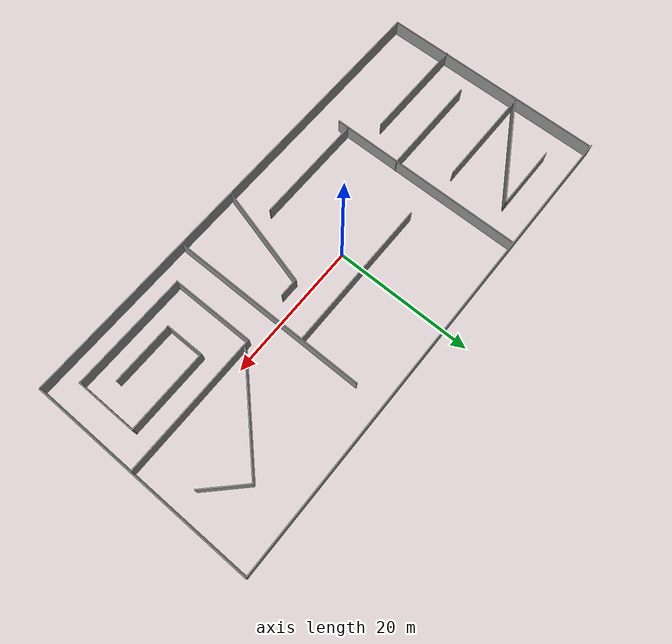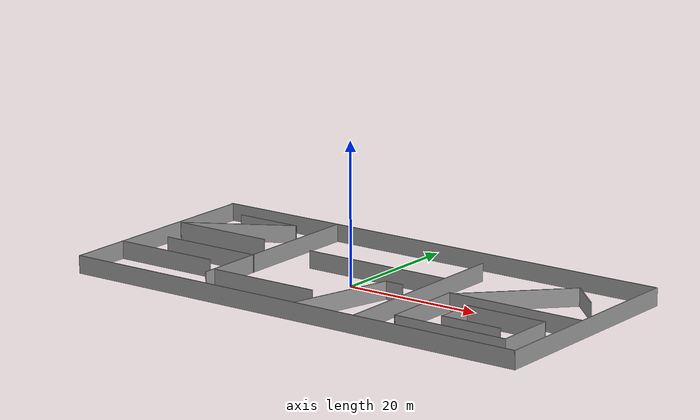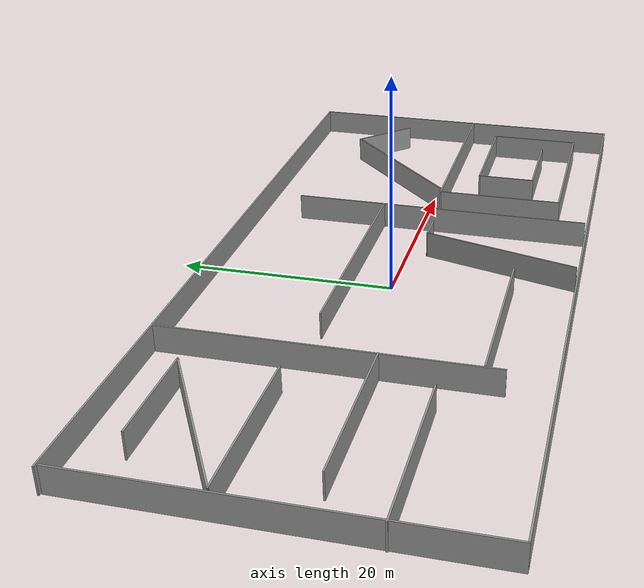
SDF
<?xml version='1.0'?>
<sdf version='1.6'>
  <model name='practice_base'>
    <pose frame=''>1.95086 0.063622 0 0 -0 0</pose>
    <link name='Wall_0'>
      <collision name='Wall_0_Collision'>
        <geometry>
          <box>
            <size>33 0.15 2.5</size>
          </box>
        </geometry>
        <pose frame=''>0 0 1.25 0 -0 0</pose>
      </collision>
      <visual name='Wall_0_Visual'>
        <pose frame=''>0 0 1.25 0 -0 0</pose>
        <geometry>
          <box>
            <size>33 0.15 2.5</size>
          </box>
        </geometry>
        <material>
          <script>
            <uri>file://media/materials/scripts/gazebo.material</uri>
            <name>Gazebo/Grey</name>
          </script>
          <ambient>1 1 1 1</ambient>
        </material>
        <meta>
          <layer>0</layer>
        </meta>
      </visual>
      <pose frame=''>-35.0767 -0.125 0 0 -0 -1.5708</pose>
    </link>
    <link name='Wall_1'>
      <collision name='Wall_1_Collision'>
        <geometry>
          <box>
            <size>70.5 0.15 2.5</size>
          </box>
        </geometry>
        <pose frame=''>0 0 1.25 0 -0 0</pose>
      </collision>
      <visual name='Wall_1_Visual'>
        <pose frame=''>0 0 1.25 0 -0 0</pose>
        <geometry>
          <box>
            <size>70.5 0.15 2.5</size>
          </box>
        </geometry>
        <material>
          <script>
            <uri>file://media/materials/scripts/gazebo.material</uri>
            <name>Gazebo/Grey</name>
          </script>
          <ambient>1 1 1 1</ambient>
        </material>
        <meta>
          <layer>0</layer>
        </meta>
      </visual>
      <pose frame=''>0.098313 -16.55 0 0 -0 0</pose>
    </link>
    <link name='Wall_11'>
      <collision name='Wall_11_Collision'>
        <geometry>
          <box>
            <size>14.75 0.15 2.5</size>
          </box>
        </geometry>
        <pose frame=''>0 0 1.25 0 -0 0</pose>
      </collision>
      <visual name='Wall_11_Visual'>
        <pose frame=''>0 0 1.25 0 -0 0</pose>
        <geometry>
          <box>
            <size>14.75 0.15 2.5</size>
          </box>
        </geometry>
        <material>
          <script>
            <uri>file://media/materials/scripts/gazebo.material</uri>
            <name>Gazebo/Grey</name>
          </script>
          <ambient>1 1 1 1</ambient>
        </material>
        <meta>
          <layer>0</layer>
        </meta>
      </visual>
      <pose frame=''>-27.3925 4.41999 0 0 -0 0</pose>
    </link>
    <link name='Wall_13'>
      <collision name='Wall_13_Collision'>
        <geometry>
          <box>
            <size>15 0.15 2.5</size>
          </box>
        </geometry>
        <pose frame=''>0 0 1.25 0 -0 0</pose>
      </collision>
      <visual name='Wall_13_Visual'>
        <pose frame=''>0 0 1.25 0 -0 0</pose>
        <geometry>
          <box>
            <size>15 0.15 2.5</size>
          </box>
        </geometry>
        <material>
          <script>
            <uri>file://media/materials/scripts/gazebo.material</uri>
            <name>Gazebo/Grey</name>
          </script>
          <ambient>1 1 1 1</ambient>
        </material>
        <meta>
          <layer>0</layer>
        </meta>
      </visual>
      <pose frame=''>-23.9329 -2.44345 0 0 -0 3.14159</pose>
    </link>
    <link name='Wall_15'>
      <collision name='Wall_15_Collision'>
        <geometry>
          <box>
            <size>15.5 0.15 2.5</size>
          </box>
        </geometry>
        <pose frame=''>0 0 1.25 0 -0 0</pose>
      </collision>
      <visual name='Wall_15_Visual'>
        <pose frame=''>0 0 1.25 0 -0 0</pose>
        <geometry>
          <box>
            <size>15.5 0.15 2.5</size>
          </box>
        </geometry>
        <material>
          <script>
            <uri>file://media/materials/scripts/gazebo.material</uri>
            <name>Gazebo/Grey</name>
          </script>
          <ambient>1 1 1 1</ambient>
        </material>
        <meta>
          <layer>0</layer>
        </meta>
      </visual>
      <pose frame=''>-27.5128 -7.67947 0 0 -0 0</pose>
    </link>
    <link name='Wall_17'>
      <collision name='Wall_17_Collision'>
        <geometry>
          <box>
            <size>28.75 0.15 2.5</size>
          </box>
        </geometry>
        <pose frame=''>0 0 1.25 0 -0 0</pose>
      </collision>
      <visual name='Wall_17_Visual'>
        <pose frame=''>0 0 1.25 0 -0 0</pose>
        <geometry>
          <box>
            <size>28.75 0.15 2.5</size>
          </box>
        </geometry>
        <material>
          <script>
            <uri>file://media/materials/scripts/gazebo.material</uri>
            <name>Gazebo/Grey</name>
          </script>
          <ambient>1 1 1 1</ambient>
        </material>
        <meta>
          <layer>0</layer>
        </meta>
      </visual>
      <pose frame=''>10.6628 -1.94107 0 0 -0 1.5708</pose>
    </link>
    <link name='Wall_19'>
      <collision name='Wall_19_Collision'>
        <geometry>
          <box>
            <size>15 0.15 2.5</size>
          </box>
        </geometry>
        <pose frame=''>0 0 1.25 0 -0 0</pose>
      </collision>
      <visual name='Wall_19_Visual'>
        <pose frame=''>0 0 1.25 0 -0 0</pose>
        <geometry>
          <box>
            <size>15 0.15 2.5</size>
          </box>
        </geometry>
        <material>
          <script>
            <uri>file://media/materials/scripts/gazebo.material</uri>
            <name>Gazebo/Grey</name>
          </script>
          <ambient>1 1 1 1</ambient>
        </material>
        <meta>
          <layer>0</layer>
        </meta>
      </visual>
      <pose frame=''>3.2446 -9.06907 0 0 -0 1.309</pose>
    </link>
    <link name='Wall_2'>
      <collision name='Wall_2_Collision'>
        <geometry>
          <box>
            <size>33.25 0.15 2.5</size>
          </box>
        </geometry>
        <pose frame=''>0 0 1.25 0 -0 0</pose>
      </collision>
      <visual name='Wall_2_Visual'>
        <pose frame=''>0 0 1.25 0 -0 0</pose>
        <geometry>
          <box>
            <size>33.25 0.15 2.5</size>
          </box>
        </geometry>
        <material>
          <script>
            <uri>file://media/materials/scripts/gazebo.material</uri>
            <name>Gazebo/Grey</name>
          </script>
          <ambient>1 1 1 1</ambient>
        </material>
        <meta>
          <layer>0</layer>
        </meta>
      </visual>
      <pose frame=''>35.2733 0 0 0 -0 1.5708</pose>
    </link>
    <link name='Wall_20'>
      <collision name='Wall_20_Collision'>
        <geometry>
          <box>
            <size>2.75 0.15 2.5</size>
          </box>
        </geometry>
        <pose frame=''>0 0 1.25 0 -0 0</pose>
      </collision>
      <visual name='Wall_20_Visual'>
        <pose frame=''>0 0 1.25 0 -0 0</pose>
        <geometry>
          <box>
            <size>2.75 0.15 2.5</size>
          </box>
        </geometry>
        <material>
          <script>
            <uri>file://media/materials/scripts/gazebo.material</uri>
            <name>Gazebo/Grey</name>
          </script>
          <ambient>1 1 1 1</ambient>
        </material>
        <meta>
          <layer>0</layer>
        </meta>
      </visual>
      <pose frame=''>6.46633 -1.89707 0 0 -0 0</pose>
    </link>
    <link name='Wall_22'>
      <collision name='Wall_22_Collision'>
        <geometry>
          <box>
            <size>16.25 0.15 2.5</size>
          </box>
        </geometry>
        <pose frame=''>0 0 1.25 0 -0 0</pose>
      </collision>
      <visual name='Wall_22_Visual'>
        <pose frame=''>0 0 1.25 0 -0 0</pose>
        <geometry>
          <box>
            <size>16.25 0.15 2.5</size>
          </box>
        </geometry>
        <material>
          <script>
            <uri>file://media/materials/scripts/gazebo.material</uri>
            <name>Gazebo/Grey</name>
          </script>
          <ambient>1 1 1 1</ambient>
        </material>
        <meta>
          <layer>0</layer>
        </meta>
      </visual>
      <pose frame=''>-8.24564 -10.8635 0 0 -0 0</pose>
    </link>
    <link name='Wall_24'>
      <collision name='Wall_24_Collision'>
        <geometry>
          <box>
            <size>22.25 0.15 2.5</size>
          </box>
        </geometry>
        <pose frame=''>0 0 1.25 0 -0 0</pose>
      </collision>
      <visual name='Wall_24_Visual'>
        <pose frame=''>0 0 1.25 0 -0 0</pose>
        <geometry>
          <box>
            <size>22.25 0.15 2.5</size>
          </box>
        </geometry>
        <material>
          <script>
            <uri>file://media/materials/scripts/gazebo.material</uri>
            <name>Gazebo/Grey</name>
          </script>
          <ambient>1 1 1 1</ambient>
        </material>
        <meta>
          <layer>0</layer>
        </meta>
      </visual>
      <pose frame=''>-0.52871 3.71242 0 0 -0 3.14159</pose>
    </link>
    <link name='Wall_26'>
      <collision name='Wall_26_Collision'>
        <geometry>
          <box>
            <size>20.5 0.15 2.5</size>
          </box>
        </geometry>
        <pose frame=''>0 0 1.25 0 -0 0</pose>
      </collision>
      <visual name='Wall_26_Visual'>
        <pose frame=''>0 0 1.25 0 -0 0</pose>
        <geometry>
          <box>
            <size>20.5 0.15 2.5</size>
          </box>
        </geometry>
        <material>
          <script>
            <uri>file://media/materials/scripts/gazebo.material</uri>
            <name>Gazebo/Grey</name>
          </script>
          <ambient>1 1 1 1</ambient>
        </material>
        <meta>
          <layer>0</layer>
        </meta>
      </visual>
      <pose frame=''>25.0405 -1.24058 0 0 -0 3.14159</pose>
    </link>
    <link name='Wall_27'>
      <collision name='Wall_27_Collision'>
        <geometry>
          <box>
            <size>12.25 0.15 2.5</size>
          </box>
        </geometry>
        <pose frame=''>0 0 1.25 0 -0 0</pose>
      </collision>
      <visual name='Wall_27_Visual'>
        <pose frame=''>0 0 1.25 0 -0 0</pose>
        <geometry>
          <box>
            <size>12.25 0.15 2.5</size>
          </box>
        </geometry>
        <material>
          <script>
            <uri>file://media/materials/scripts/gazebo.material</uri>
            <name>Gazebo/Grey</name>
          </script>
          <ambient>1 1 1 1</ambient>
        </material>
        <meta>
          <layer>0</layer>
        </meta>
      </visual>
      <pose frame=''>14.8655 -7.29058 0 0 -0 -1.5708</pose>
    </link>
    <link name='Wall_28'>
      <collision name='Wall_28_Collision'>
        <geometry>
          <box>
            <size>17 0.15 2.5</size>
          </box>
        </geometry>
        <pose frame=''>0 0 1.25 0 -0 0</pose>
      </collision>
      <visual name='Wall_28_Visual'>
        <pose frame=''>0 0 1.25 0 -0 0</pose>
        <geometry>
          <box>
            <size>17 0.15 2.5</size>
          </box>
        </geometry>
        <material>
          <script>
            <uri>file://media/materials/scripts/gazebo.material</uri>
            <name>Gazebo/Grey</name>
          </script>
          <ambient>1 1 1 1</ambient>
        </material>
        <meta>
          <layer>0</layer>
        </meta>
      </visual>
      <pose frame=''>23.2905 -13.3406 0 0 -0 0</pose>
    </link>
    <link name='Wall_29'>
      <collision name='Wall_29_Collision'>
        <geometry>
          <box>
            <size>9 0.15 2.5</size>
          </box>
        </geometry>
        <pose frame=''>0 0 1.25 0 -0 0</pose>
      </collision>
      <visual name='Wall_29_Visual'>
        <pose frame=''>0 0 1.25 0 -0 0</pose>
        <geometry>
          <box>
            <size>9 0.15 2.5</size>
          </box>
        </geometry>
        <material>
          <script>
            <uri>file://media/materials/scripts/gazebo.material</uri>
            <name>Gazebo/Grey</name>
          </script>
          <ambient>1 1 1 1</ambient>
        </material>
        <meta>
          <layer>0</layer>
        </meta>
      </visual>
      <pose frame=''>31.7155 -8.91558 0 0 -0 1.5708</pose>
    </link>
    <link name='Wall_30'>
      <collision name='Wall_30_Collision'>
        <geometry>
          <box>
            <size>12 0.15 2.5</size>
          </box>
        </geometry>
        <pose frame=''>0 0 1.25 0 -0 0</pose>
      </collision>
      <visual name='Wall_30_Visual'>
        <pose frame=''>0 0 1.25 0 -0 0</pose>
        <geometry>
          <box>
            <size>12 0.15 2.5</size>
          </box>
        </geometry>
        <material>
          <script>
            <uri>file://media/materials/scripts/gazebo.material</uri>
            <name>Gazebo/Grey</name>
          </script>
          <ambient>1 1 1 1</ambient>
        </material>
        <meta>
          <layer>0</layer>
        </meta>
      </visual>
      <pose frame=''>25.7905 -4.49058 0 0 -0 3.14159</pose>
    </link>
    <link name='Wall_31'>
      <collision name='Wall_31_Collision'>
        <geometry>
          <box>
            <size>5.75 0.15 2.5</size>
          </box>
        </geometry>
        <pose frame=''>0 0 1.25 0 -0 0</pose>
      </collision>
      <visual name='Wall_31_Visual'>
        <pose frame=''>0 0 1.25 0 -0 0</pose>
        <geometry>
          <box>
            <size>5.75 0.15 2.5</size>
          </box>
        </geometry>
        <material>
          <script>
            <uri>file://media/materials/scripts/gazebo.material</uri>
            <name>Gazebo/Grey</name>
          </script>
          <ambient>1 1 1 1</ambient>
        </material>
        <meta>
          <layer>0</layer>
        </meta>
      </visual>
      <pose frame=''>19.8655 -7.29058 0 0 -0 -1.5708</pose>
    </link>
    <link name='Wall_32'>
      <collision name='Wall_32_Collision'>
        <geometry>
          <box>
            <size>9 0.15 2.5</size>
          </box>
        </geometry>
        <pose frame=''>0 0 1.25 0 -0 0</pose>
      </collision>
      <visual name='Wall_32_Visual'>
        <pose frame=''>0 0 1.25 0 -0 0</pose>
        <geometry>
          <box>
            <size>9 0.15 2.5</size>
          </box>
        </geometry>
        <material>
          <script>
            <uri>file://media/materials/scripts/gazebo.material</uri>
            <name>Gazebo/Grey</name>
          </script>
          <ambient>1 1 1 1</ambient>
        </material>
        <meta>
          <layer>0</layer>
        </meta>
      </visual>
      <pose frame=''>24.2905 -10.0906 0 0 -0 0</pose>
    </link>
    <link name='Wall_34'>
      <collision name='Wall_34_Collision'>
        <geometry>
          <box>
            <size>16.5 0.15 2.5</size>
          </box>
        </geometry>
        <pose frame=''>0 0 1.25 0 -0 0</pose>
      </collision>
      <visual name='Wall_34_Visual'>
        <pose frame=''>0 0 1.25 0 -0 0</pose>
        <geometry>
          <box>
            <size>16.5 0.15 2.5</size>
          </box>
        </geometry>
        <material>
          <script>
            <uri>file://media/materials/scripts/gazebo.material</uri>
            <name>Gazebo/Grey</name>
          </script>
          <ambient>1 1 1 1</ambient>
        </material>
        <meta>
          <layer>0</layer>
        </meta>
      </visual>
      <pose frame=''>21.5379 4.75229 0 0 -0 0.785398</pose>
    </link>
    <link name='Wall_35'>
      <collision name='Wall_35_Collision'>
        <geometry>
          <box>
            <size>6.75 0.15 2.5</size>
          </box>
        </geometry>
        <pose frame=''>0 0 1.25 0 -0 0</pose>
      </collision>
      <visual name='Wall_35_Visual'>
        <pose frame=''>0 0 1.25 0 -0 0</pose>
        <geometry>
          <box>
            <size>6.75 0.15 2.5</size>
          </box>
        </geometry>
        <material>
          <script>
            <uri>file://media/materials/scripts/gazebo.material</uri>
            <name>Gazebo/Grey</name>
          </script>
          <ambient>1 1 1 1</ambient>
        </material>
        <meta>
          <layer>0</layer>
        </meta>
      </visual>
      <pose frame=''>29.652 8.19944 0 0 -0 -0.785398</pose>
    </link>
    <link name='Wall_4'>
      <collision name='Wall_4_Collision'>
        <geometry>
          <box>
            <size>70.5 0.15 2.5</size>
          </box>
        </geometry>
        <pose frame=''>0 0 1.25 0 -0 0</pose>
      </collision>
      <visual name='Wall_4_Visual'>
        <pose frame=''>0 0 1.25 0 -0 0</pose>
        <geometry>
          <box>
            <size>70.5 0.15 2.5</size>
          </box>
        </geometry>
        <material>
          <script>
            <uri>file://media/materials/scripts/gazebo.material</uri>
            <name>Gazebo/Grey</name>
          </script>
          <ambient>1 1 1 1</ambient>
        </material>
        <meta>
          <layer>0</layer>
        </meta>
      </visual>
      <pose frame=''>-0.098311 16.5433 0 0 -0 0</pose>
    </link>
    <link name='Wall_6'>
      <collision name='Wall_6_Collision'>
        <geometry>
          <box>
            <size>29 0.15 2.5</size>
          </box>
        </geometry>
        <pose frame=''>0 0 1.25 0 -0 0</pose>
      </collision>
      <visual name='Wall_6_Visual'>
        <pose frame=''>0 0 1.25 0 -0 0</pose>
        <geometry>
          <box>
            <size>29 0.15 2.5</size>
          </box>
        </geometry>
        <material>
          <script>
            <uri>file://media/materials/scripts/gazebo.material</uri>
            <name>Gazebo/Grey</name>
          </script>
          <ambient>1 1 1 1</ambient>
        </material>
        <meta>
          <layer>0</layer>
        </meta>
      </visual>
      <pose frame=''>-16.5581 1.95561 0 0 -0 -1.5708</pose>
    </link>
    <link name='Wall_8'>
      <collision name='Wall_8_Collision'>
        <geometry>
          <box>
            <size>16.25 0.15 2.5</size>
          </box>
        </geometry>
        <pose frame=''>0 0 1.25 0 -0 0</pose>
      </collision>
      <visual name='Wall_8_Visual'>
        <pose frame=''>0 0 1.25 0 -0 0</pose>
        <geometry>
          <box>
            <size>16.25 0.15 2.5</size>
          </box>
        </geometry>
        <material>
          <script>
            <uri>file://media/materials/scripts/gazebo.material</uri>
            <name>Gazebo/Grey</name>
          </script>
          <ambient>1 1 1 1</ambient>
        </material>
        <meta>
          <layer>0</layer>
        </meta>
      </visual>
      <pose frame=''>-27.721 8.44499 0 0 -0 0.523599</pose>
    </link>
    <link name='Wall_9'>
      <collision name='Wall_9_Collision'>
        <geometry>
          <box>
            <size>9.75 0.15 2.5</size>
          </box>
        </geometry>
        <pose frame=''>0 0 1.25 0 -0 0</pose>
      </collision>
      <visual name='Wall_9_Visual'>
        <pose frame=''>0 0 1.25 0 -0 0</pose>
        <geometry>
          <box>
            <size>9.75 0.15 2.5</size>
          </box>
        </geometry>
        <material>
          <script>
            <uri>file://media/materials/scripts/gazebo.material</uri>
            <name>Gazebo/Grey</name>
          </script>
          <ambient>1 1 1 1</ambient>
        </material>
        <meta>
          <layer>0</layer>
        </meta>
      </visual>
      <pose frame=''>-25.5495 12.47 0 0 -0 3.14159</pose>
    </link>
    <static>1</static>
  </model>
</sdf>
